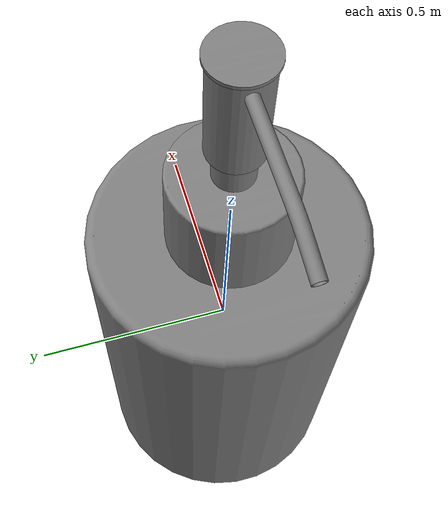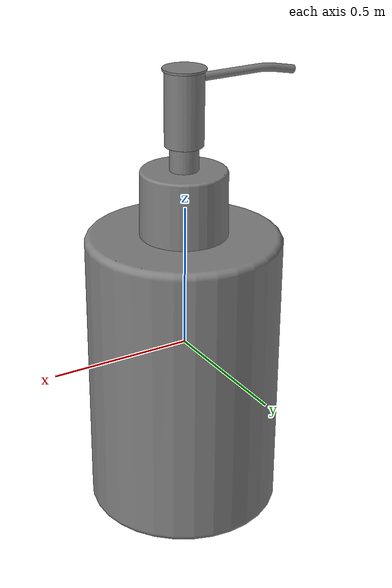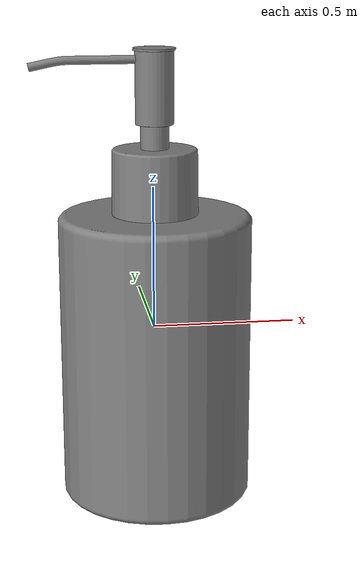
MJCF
<?xml version='1.0' encoding='UTF-8'?>
<mujoco model="partnet_2bbbe0e4-7f35-43a1-927c-d4c84e1af737">
  <compiler angle="radian"/>
  <asset>
    <mesh name="original_2" content_type="model/obj" file="textured_objs/original_2.obj"/>
    <mesh name="original_3" content_type="model/obj" file="textured_objs/original_3.obj"/>
    <mesh name="original_8" content_type="model/obj" file="textured_objs/original_8.obj"/>
    <mesh name="original_9" content_type="model/obj" file="textured_objs/original_9.obj"/>
    <mesh name="original_12" content_type="model/obj" file="textured_objs/original_12.obj"/>
    <mesh name="original_11" content_type="model/obj" file="textured_objs/original_11.obj"/>
    <mesh name="original_14" content_type="model/obj" file="textured_objs/original_14.obj"/>
    <mesh name="original_6" content_type="model/obj" file="textured_objs/original_6.obj"/>
    <mesh name="original_5" content_type="model/obj" file="textured_objs/original_5.obj"/>
    <mesh name="original_1" content_type="model/obj" file="textured_objs/original_1.obj"/>
  </asset>
  <worldbody>
    <body name="base">
      <body name="link_2" quat="0.5 0.5 -0.5 -0.5">
        <geom type="mesh" mesh="original_5"/>
        <geom type="mesh" mesh="original_1"/>
        <body name="link_1_helper" pos="0.00133198 0 -0.00459413">
          <inertial pos="0 0 0" mass="1e-06" diaginertia="1e-10 1e-10 1e-10"/>
          <joint name="joint_4" pos="0 0 0" axis="0 1 0" type="slide" range="0 0.01"/>
          <body name="link_1">
            <joint name="joint_1" pos="0 0 0" axis="0 1 0"/>
            <geom pos="-0.00133198 0 0.00459413" quat="1 0 0 0" type="mesh" mesh="original_6"/>
            <body name="link_0_helper" pos="-1.42384e-07 0 1.54915e-07">
              <inertial pos="0 0 0" mass="1e-06" diaginertia="1e-10 1e-10 1e-10"/>
              <joint name="joint_3" pos="0 0 0" axis="0 -1 0" type="slide" range="0 0.09"/>
              <body name="link_0">
                <joint name="joint_0" pos="0 0 0" axis="0 1 0"/>
                <geom pos="-0.00133184 0 0.00459397" quat="1 0 0 0" type="mesh" mesh="original_2"/>
                <geom pos="-0.00133184 0 0.00459397" quat="1 0 0 0" type="mesh" mesh="original_3"/>
                <geom pos="-0.00133184 0 0.00459397" quat="1 0 0 0" type="mesh" mesh="original_8"/>
                <geom pos="-0.00133184 0 0.00459397" quat="1 0 0 0" type="mesh" mesh="original_9"/>
                <geom pos="-0.00133184 0 0.00459397" quat="1 0 0 0" type="mesh" mesh="original_12"/>
                <geom pos="-0.00133184 0 0.00459397" type="mesh" mesh="original_11"/>
                <geom pos="-0.00133184 0 0.00459397" quat="1 0 0 0" type="mesh" mesh="original_14"/>
              </body>
            </body>
          </body>
        </body>
      </body>
    </body>
  </worldbody>
</mujoco>
